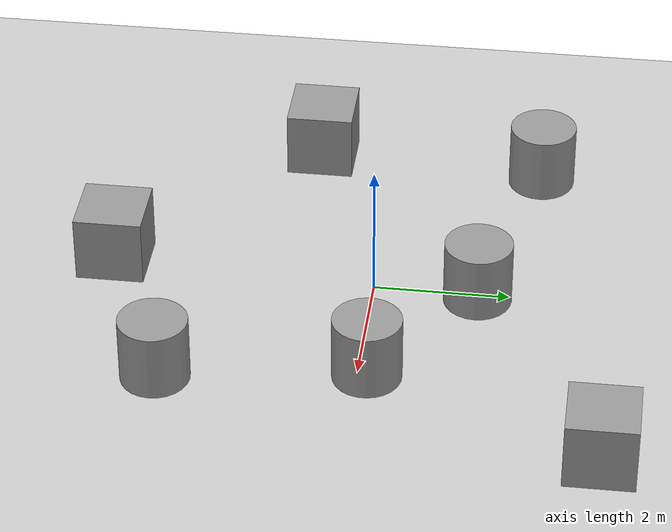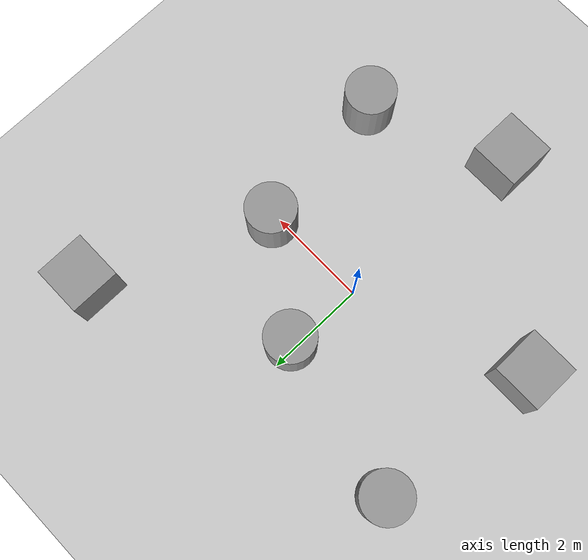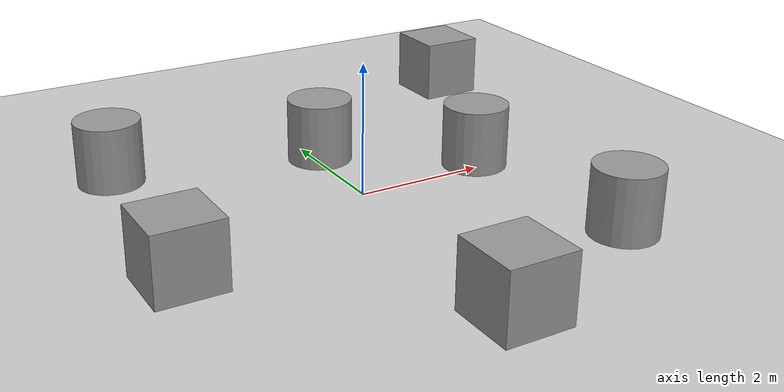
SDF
<sdf version="1.7">
 <world name="default">
  <light name="sun" type="directional">
   <pose>0 0 10 0 -0 0</pose>
   <diffuse>0.8 0.8 0.8 1</diffuse>
   <specular>0.2 0.2 0.2 1</specular>
   <attenuation>
    <range>1000</range>
    <constant>0.9</constant>
    <linear>0.01</linear>
    <quadratic>0.001</quadratic>
   </attenuation>
   <direction>-0.5 0.1 -0.9</direction>
   <spot><inner_angle>0</inner_angle><outer_angle>0</outer_angle><falloff>0</falloff></spot>
  </light>
  <model name="ground_plane">
   <static>1</static>
   <link name="link">
    <collision name="collision">
     <geometry><plane><normal>0 0 1</normal><size>100 100</size></plane></geometry>
     <surface>
      <contact><collide_bitmask>65535</collide_bitmask></contact>
      <friction><ode><mu>100</mu><mu2>50</mu2></ode></friction>
     </surface>
    </collision>
    <visual name="visual">
     <cast_shadows>0</cast_shadows>
     <geometry><plane><normal>0 0 1</normal><size>100 100</size></plane></geometry>
     <material>
      <script><uri>file://media/materials/scripts/gazebo.material</uri><name>Gazebo/Grey</name></script>
     </material>
    </visual>
   </link>
  </model>
  <gravity>0 0 -9.8</gravity>
  <magnetic_field>6e-06 2.3e-05 -4.2e-05</magnetic_field>
  <atmosphere type="adiabatic"/>
  <physics type="ode">
   <max_step_size>0.001</max_step_size>
   <real_time_factor>1</real_time_factor>
   <real_time_update_rate>1000</real_time_update_rate>
  </physics>
  <scene><ambient>0.4 0.4 0.4 1</ambient><background>0.7 0.7 0.7 1</background><shadows>1</shadows></scene>
  <audio><device>default</device></audio>
  <spherical_coordinates>
   <surface_model>EARTH_WGS84</surface_model>
   <latitude_deg>0</latitude_deg>
   <longitude_deg>0</longitude_deg>
   <elevation>0</elevation>
   <heading_deg>0</heading_deg>
  </spherical_coordinates>
  <model name="unit_box">
   <pose>-3.3122 -1.17359 0.5 0 -0 0</pose>
   <link name="link">
    <inertial>
     <mass>1</mass>
     <inertia>
      <ixx>0.166667</ixx>
      <ixy>0</ixy>
      <ixz>0</ixz>
      <iyy>0.166667</iyy>
      <iyz>0</iyz>
      <izz>0.166667</izz>
     </inertia>
    </inertial>
    <collision name="collision"><geometry><box><size>1 1 1</size></box></geometry></collision>
    <visual name="visual">
     <geometry><box><size>1 1 1</size></box></geometry>
     <material>
      <script><name>Gazebo/Grey</name><uri>file://media/materials/scripts/gazebo.material</uri></script>
     </material>
    </visual>
   </link>
  </model>
  <model name="unit_box_0">
   <pose>-0.206195 -3.88571 0.5 -0 -0 -0</pose>
   <link name="link">
    <inertial>
     <mass>1</mass>
     <inertia>
      <ixx>0.166667</ixx>
      <ixy>0</ixy>
      <ixz>0</ixz>
      <iyy>0.166667</iyy>
      <iyz>0</iyz>
      <izz>0.166667</izz>
     </inertia>
    </inertial>
    <collision name="collision"><geometry><box><size>1 1 1</size></box></geometry></collision>
    <visual name="visual">
     <geometry><box><size>1 1 1</size></box></geometry>
     <material>
      <script><name>Gazebo/Grey</name><uri>file://media/materials/scripts/gazebo.material</uri></script>
     </material>
    </visual>
   </link>
  </model>
  <model name="unit_box_1">
   <pose>3.59942 3.49617 0.5 0 -0 0</pose>
   <link name="link">
    <inertial>
     <mass>1</mass>
     <inertia>
      <ixx>0.166667</ixx>
      <ixy>0</ixy>
      <ixz>0</ixz>
      <iyy>0.166667</iyy>
      <iyz>0</iyz>
      <izz>0.166667</izz>
     </inertia>
    </inertial>
    <collision name="collision"><geometry><box><size>1 1 1</size></box></geometry></collision>
    <visual name="visual">
     <geometry><box><size>1 1 1</size></box></geometry>
     <material>
      <script><name>Gazebo/Grey</name><uri>file://media/materials/scripts/gazebo.material</uri></script>
     </material>
    </visual>
   </link>
  </model>
  <model name="unit_cylinder">
   <pose>0.102109 1.53373 0.499997 3e-06 3e-06 0</pose>
   <link name="link">
    <inertial>
     <mass>1</mass>
     <inertia><ixx>0.145833</ixx><ixy>0</ixy><ixz>0</ixz><iyy>0.145833</iyy><iyz>0</iyz><izz>0.125</izz></inertia>
    </inertial>
    <collision name="collision">
     <geometry><cylinder><radius>0.5</radius><length>1</length></cylinder></geometry>
    </collision>
    <visual name="visual">
     <geometry><cylinder><radius>0.5</radius><length>1</length></cylinder></geometry>
     <material>
      <script><name>Gazebo/Grey</name><uri>file://media/materials/scripts/gazebo.material</uri></script>
     </material>
    </visual>
   </link>
  </model>
  <model name="unit_cylinder_0">
   <pose>2.07405 0.141521 0.5 0 -0 0.888663</pose>
   <link name="link">
    <inertial>
     <mass>1</mass>
     <inertia><ixx>0.145833</ixx><ixy>0</ixy><ixz>0</ixz><iyy>0.145833</iyy><iyz>0</iyz><izz>0.125</izz></inertia>
    </inertial>
    <collision name="collision">
     <geometry><cylinder><radius>0.5</radius><length>1</length></cylinder></geometry>
    </collision>
    <visual name="visual">
     <geometry><cylinder><radius>0.5</radius><length>1</length></cylinder></geometry>
     <material>
      <script><name>Gazebo/Grey</name><uri>file://media/materials/scripts/gazebo.material</uri></script>
     </material>
    </visual>
   </link>
  </model>
  <model name="unit_cylinder_1">
   <pose>-3.05041 2.259 0.499997 3e-06 4e-06 -0</pose>
   <link name="link">
    <inertial>
     <mass>1</mass>
     <inertia><ixx>0.145833</ixx><ixy>0</ixy><ixz>0</ixz><iyy>0.145833</iyy><iyz>0</iyz><izz>0.125</izz></inertia>
    </inertial>
    <collision name="collision">
     <geometry><cylinder><radius>0.5</radius><length>1</length></cylinder></geometry>
    </collision>
    <visual name="visual">
     <geometry><cylinder><radius>0.5</radius><length>1</length></cylinder></geometry>
     <material>
      <script><name>Gazebo/Grey</name><uri>file://media/materials/scripts/gazebo.material</uri></script>
     </material>
    </visual>
   </link>
  </model>
  <model name="unit_cylinder_2">
   <pose>2.44317 -2.81467 0.499993 -3e-06 -4e-06 -0</pose>
   <link name="link">
    <inertial>
     <mass>1</mass>
     <inertia><ixx>0.145833</ixx><ixy>0</ixy><ixz>0</ixz><iyy>0.145833</iyy><iyz>0</iyz><izz>0.125</izz></inertia>
    </inertial>
    <collision name="collision">
     <geometry><cylinder><radius>0.5</radius><length>1</length></cylinder></geometry>
    </collision>
    <visual name="visual">
     <geometry><cylinder><radius>0.5</radius><length>1</length></cylinder></geometry>
     <material>
      <script><name>Gazebo/Grey</name><uri>file://media/materials/scripts/gazebo.material</uri></script>
     </material>
    </visual>
   </link>
  </model>
 </world>
</sdf>
